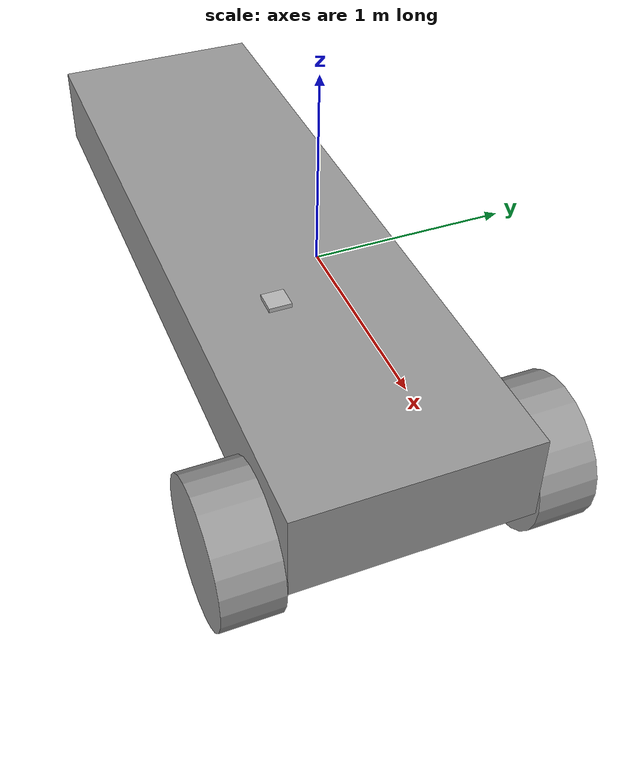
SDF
<?xml version='1.0'?>
<sdf version='1.6'>
  <model name='vehicle'>
    <link name='link_0'>
      <inertial>
        <mass>1.28573</mass>
        <inertia>
          <ixx>0.123502</ixx>
          <ixy>0</ixy>
          <ixz>0</ixz>
          <iyy>1.17774</iyy>
          <iyz>0</iyz>
          <izz>1.26852</izz>
        </inertia>
        <pose frame=''>0 0 0.4 0 -0 0</pose>
      </inertial>
      <pose frame=''>0.173636 -0.359882 0.24 -0 -0 -0</pose>
      <gravity>1</gravity>
      <self_collide>0</self_collide>
      <kinematic>0</kinematic>
      <enable_wind>0</enable_wind>
      <visual name='visual'>
        <pose frame=''>0 0 0 0 -0 0</pose>
        <geometry>
          <box>
            <size>3.29233 1 0.390741</size>
          </box>
        </geometry>
        <material>
          <lighting>1</lighting>
          <script>
            <uri>file://media/materials/scripts/gazebo.material</uri>
            <name>Gazebo/Grey</name>
          </script>
          <shader type='vertex'>
            <normal_map>__default__</normal_map>
          </shader>
          <ambient>0.3 0.3 0.3 1</ambient>
          <diffuse>0.7 0.7 0.7 1</diffuse>
          <specular>0.01 0.01 0.01 1</specular>
          <emissive>0 0 0 1</emissive>
        </material>
        <transparency>0</transparency>
        <cast_shadows>1</cast_shadows>
      </visual>
      <collision name='collision'>
        <laser_retro>0</laser_retro>
        <max_contacts>10</max_contacts>
        <pose frame=''>0 0 0 0 -0 0</pose>
        <geometry>
          <box>
            <size>3.29233 1 0.390741</size>
          </box>
        </geometry>
        <surface>
          <friction>
            <ode>
              <mu>1</mu>
              <mu2>1</mu2>
              <fdir1>0 0 0</fdir1>
              <slip1>0</slip1>
              <slip2>0</slip2>
            </ode>
            <torsional>
              <coefficient>1</coefficient>
              <patch_radius>0</patch_radius>
              <surface_radius>0</surface_radius>
              <use_patch_radius>1</use_patch_radius>
              <ode>
                <slip>0</slip>
              </ode>
            </torsional>
          </friction>
          <bounce>
            <restitution_coefficient>0</restitution_coefficient>
            <threshold>1e+06</threshold>
          </bounce>
          <contact>
            <collide_without_contact>0</collide_without_contact>
            <collide_without_contact_bitmask>1</collide_without_contact_bitmask>
            <collide_bitmask>1</collide_bitmask>
            <ode>
              <soft_cfm>0</soft_cfm>
              <soft_erp>0.2</soft_erp>
              <kp>1e+13</kp>
              <kd>1</kd>
              <max_vel>0.01</max_vel>
              <min_depth>0</min_depth>
            </ode>
            <bullet>
              <split_impulse>1</split_impulse>
              <split_impulse_penetration_threshold>-0.01</split_impulse_penetration_threshold>
              <soft_cfm>0</soft_cfm>
              <soft_erp>0.2</soft_erp>
              <kp>1e+13</kp>
              <kd>1</kd>
            </bullet>
          </contact>
        </surface>
      </collision>
    </link>
    <link name='link_2'>
      <inertial>
        <mass>1</mass>
        <inertia>
          <ixx>0.145833</ixx>
          <ixy>0</ixy>
          <ixz>0</ixz>
          <iyy>0.145833</iyy>
          <iyz>0</iyz>
          <izz>0.125</izz>
        </inertia>
        <pose frame=''>0 0 0 0 -0 0</pose>
      </inertial>
      <pose frame=''>1.51981 0.280147 0.04 1.5707 -0 0</pose>
      <gravity>1</gravity>
      <self_collide>0</self_collide>
      <kinematic>0</kinematic>
      <enable_wind>0</enable_wind>
      <visual name='visual'>
        <pose frame=''>0 0 0 0 -0 0</pose>
        <geometry>
          <cylinder>
            <radius>0.3</radius>
            <length>0.25</length>
          </cylinder>
        </geometry>
        <material>
          <lighting>1</lighting>
          <script>
            <uri>file://media/materials/scripts/gazebo.material</uri>
            <name>Gazebo/Grey</name>
          </script>
          <shader type='vertex'>
            <normal_map>__default__</normal_map>
          </shader>
          <ambient>0.3 0.3 0.3 1</ambient>
          <diffuse>0.7 0.7 0.7 1</diffuse>
          <specular>0.01 0.01 0.01 1</specular>
          <emissive>0 0 0 1</emissive>
        </material>
        <transparency>0</transparency>
        <cast_shadows>1</cast_shadows>
      </visual>
      <collision name='collision'>
        <laser_retro>0</laser_retro>
        <max_contacts>10</max_contacts>
        <pose frame=''>0 0 0 0 -0 0</pose>
        <geometry>
          <cylinder>
            <radius>0.3</radius>
            <length>0.25</length>
          </cylinder>
        </geometry>
        <surface>
          <friction>
            <ode>
              <mu>1</mu>
              <mu2>1</mu2>
              <fdir1>0 0 0</fdir1>
              <slip1>0</slip1>
              <slip2>0</slip2>
            </ode>
            <torsional>
              <coefficient>1</coefficient>
              <patch_radius>0</patch_radius>
              <surface_radius>0</surface_radius>
              <use_patch_radius>1</use_patch_radius>
              <ode>
                <slip>0</slip>
              </ode>
            </torsional>
          </friction>
          <bounce>
            <restitution_coefficient>0</restitution_coefficient>
            <threshold>1e+06</threshold>
          </bounce>
          <contact>
            <collide_without_contact>0</collide_without_contact>
            <collide_without_contact_bitmask>1</collide_without_contact_bitmask>
            <collide_bitmask>1</collide_bitmask>
            <ode>
              <soft_cfm>0</soft_cfm>
              <soft_erp>0.2</soft_erp>
              <kp>1e+13</kp>
              <kd>1</kd>
              <max_vel>0.01</max_vel>
              <min_depth>0</min_depth>
            </ode>
            <bullet>
              <split_impulse>1</split_impulse>
              <split_impulse_penetration_threshold>-0.01</split_impulse_penetration_threshold>
              <soft_cfm>0</soft_cfm>
              <soft_erp>0.2</soft_erp>
              <kp>1e+13</kp>
              <kd>1</kd>
            </bullet>
          </contact>
        </surface>
      </collision>
    </link>
    <link name='link_2_clone'>
      <inertial>
        <mass>0.999678</mass>
        <inertia>
          <ixx>0.0276994</ixx>
          <ixy>0</ixy>
          <ixz>0</ixz>
          <iyy>0.0276994</iyy>
          <iyz>0</iyz>
          <izz>0.0449855</izz>
        </inertia>
        <pose frame=''>0 0 0 0 -0 0</pose>
      </inertial>
      <pose frame=''>1.51981 -0.984911 0.04 1.5707 -0 0</pose>
      <gravity>1</gravity>
      <self_collide>0</self_collide>
      <kinematic>0</kinematic>
      <enable_wind>0</enable_wind>
      <visual name='visual'>
        <pose frame=''>0 0 0 0 -0 0</pose>
        <geometry>
          <cylinder>
            <radius>0.3</radius>
            <length>0.25</length>
          </cylinder>
        </geometry>
        <material>
          <lighting>1</lighting>
          <script>
            <uri>file://media/materials/scripts/gazebo.material</uri>
            <name>Gazebo/Grey</name>
          </script>
          <shader type='vertex'>
            <normal_map>__default__</normal_map>
          </shader>
          <ambient>0.3 0.3 0.3 1</ambient>
          <diffuse>0.7 0.7 0.7 1</diffuse>
          <specular>0.01 0.01 0.01 1</specular>
          <emissive>0 0 0 1</emissive>
        </material>
        <transparency>0</transparency>
        <cast_shadows>1</cast_shadows>
      </visual>
      <collision name='collision'>
        <laser_retro>0</laser_retro>
        <max_contacts>10</max_contacts>
        <pose frame=''>0 0 0 0 -0 0</pose>
        <geometry>
          <cylinder>
            <radius>0.3</radius>
            <length>0.25</length>
          </cylinder>
        </geometry>
        <surface>
          <friction>
            <ode>
              <mu>1</mu>
              <mu2>1</mu2>
              <fdir1>0 0 0</fdir1>
              <slip1>0</slip1>
              <slip2>0</slip2>
            </ode>
            <torsional>
              <coefficient>1</coefficient>
              <patch_radius>0</patch_radius>
              <surface_radius>0</surface_radius>
              <use_patch_radius>1</use_patch_radius>
              <ode>
                <slip>0</slip>
              </ode>
            </torsional>
          </friction>
          <bounce>
            <restitution_coefficient>0</restitution_coefficient>
            <threshold>1e+06</threshold>
          </bounce>
          <contact>
            <collide_without_contact>0</collide_without_contact>
            <collide_without_contact_bitmask>1</collide_without_contact_bitmask>
            <collide_bitmask>1</collide_bitmask>
            <ode>
              <soft_cfm>0</soft_cfm>
              <soft_erp>0.2</soft_erp>
              <kp>1e+13</kp>
              <kd>1</kd>
              <max_vel>0.01</max_vel>
              <min_depth>0</min_depth>
            </ode>
            <bullet>
              <split_impulse>1</split_impulse>
              <split_impulse_penetration_threshold>-0.01</split_impulse_penetration_threshold>
              <soft_cfm>0</soft_cfm>
              <soft_erp>0.2</soft_erp>
              <kp>1e+13</kp>
              <kd>1</kd>
            </bullet>
          </contact>
        </surface>
      </collision>
    </link>
    <link name='link_3'>
      <inertial>
        <mass>1</mass>
        <inertia>
          <ixx>0.1</ixx>
          <ixy>0</ixy>
          <ixz>0</ixz>
          <iyy>0.1</iyy>
          <iyz>0</iyz>
          <izz>0.1</izz>
        </inertia>
        <pose frame=''>0 0 0 0 -0 0</pose>
      </inertial>
      <pose frame=''>-1.27253 -0.359882 -0.06 -0 -0 -0</pose>
      <gravity>1</gravity>
      <self_collide>0</self_collide>
      <kinematic>0</kinematic>
      <enable_wind>0</enable_wind>
      <visual name='visual'>
        <pose frame=''>0 0 0 0 -0 0</pose>
        <geometry>
          <sphere>
            <radius>0.2</radius>
          </sphere>
        </geometry>
        <material>
          <lighting>1</lighting>
          <script>
            <uri>file://media/materials/scripts/gazebo.material</uri>
            <name>Gazebo/Grey</name>
          </script>
          <shader type='vertex'>
            <normal_map>__default__</normal_map>
          </shader>
          <ambient>0.3 0.3 0.3 1</ambient>
          <diffuse>0.7 0.7 0.7 1</diffuse>
          <specular>0.01 0.01 0.01 1</specular>
          <emissive>0 0 0 1</emissive>
        </material>
        <transparency>0</transparency>
        <cast_shadows>1</cast_shadows>
      </visual>
      <collision name='collision'>
        <laser_retro>0</laser_retro>
        <max_contacts>10</max_contacts>
        <pose frame=''>0 0 0 0 -0 0</pose>
        <geometry>
          <sphere>
            <radius>0.2</radius>
          </sphere>
        </geometry>
        <surface>
          <friction>
            <ode>
              <mu>1</mu>
              <mu2>1</mu2>
              <fdir1>0 0 0</fdir1>
              <slip1>0</slip1>
              <slip2>0</slip2>
            </ode>
            <torsional>
              <coefficient>1</coefficient>
              <patch_radius>0</patch_radius>
              <surface_radius>0</surface_radius>
              <use_patch_radius>1</use_patch_radius>
              <ode>
                <slip>0</slip>
              </ode>
            </torsional>
          </friction>
          <bounce>
            <restitution_coefficient>0</restitution_coefficient>
            <threshold>1e+06</threshold>
          </bounce>
          <contact>
            <collide_without_contact>0</collide_without_contact>
            <collide_without_contact_bitmask>1</collide_without_contact_bitmask>
            <collide_bitmask>1</collide_bitmask>
            <ode>
              <soft_cfm>0</soft_cfm>
              <soft_erp>0.2</soft_erp>
              <kp>1e+13</kp>
              <kd>1</kd>
              <max_vel>0.01</max_vel>
              <min_depth>0</min_depth>
            </ode>
            <bullet>
              <split_impulse>1</split_impulse>
              <split_impulse_penetration_threshold>-0.01</split_impulse_penetration_threshold>
              <soft_cfm>0</soft_cfm>
              <soft_erp>0.2</soft_erp>
              <kp>1e+13</kp>
              <kd>1</kd>
            </bullet>
          </contact>
        </surface>
      </collision>
    </link>
    <model name='depth_camera'>
      <link name='link'>
        <pose frame=''>0 0 0.05 0 -0 0</pose>
        <inertial>
          <mass>0.1</mass>
          <inertia>
            <ixx>0.000166667</ixx>
            <iyy>0.000166667</iyy>
            <izz>0.000166667</izz>
            <ixy>0</ixy>
            <ixz>0</ixz>
            <iyz>0</iyz>
          </inertia>
        </inertial>
        <collision name='collision'>
          <geometry>
            <box>
              <size>0.1 0.1 0.1</size>
            </box>
          </geometry>
          <max_contacts>10</max_contacts>
          <surface>
            <contact>
              <ode/>
            </contact>
            <bounce/>
            <friction>
              <torsional>
                <ode/>
              </torsional>
              <ode/>
            </friction>
          </surface>
        </collision>
        <visual name='visual'>
          <geometry>
            <box>
              <size>0.1 0.1 0.1</size>
            </box>
          </geometry>
        </visual>
        <sensor name='camera' type='depth'>
          <camera name='__default__'>
            <horizontal_fov>1.047</horizontal_fov>
            <image>
              <width>320</width>
              <height>240</height>
            </image>
            <clip>
              <near>0.1</near>
              <far>100</far>
            </clip>
          </camera>
          <always_on>1</always_on>
          <update_rate>30</update_rate>
          <visualize>1</visualize>
        </sensor>
        <self_collide>0</self_collide>
        <enable_wind>0</enable_wind>
        <kinematic>0</kinematic>
      </link>
      <pose frame=''>0.74495 -0.492089 0.354953 -0 -0 -0</pose>
    </model>
    <joint name='link_0_JOINT_0' type='revolute'>
      <parent>link_0</parent>
      <child>link_2</child>
      <pose frame=''>0 0 0 0 -0 0</pose>
      <axis>
        <xyz>0 0 1</xyz>
        <use_parent_model_frame>0</use_parent_model_frame>
        <limit>
          <lower>-1.79769e+308</lower>
          <upper>1.79769e+308</upper>
          <effort>-1</effort>
          <velocity>-1</velocity>
        </limit>
        <dynamics>
          <spring_reference>0</spring_reference>
          <spring_stiffness>0</spring_stiffness>
          <damping>0</damping>
          <friction>0</friction>
        </dynamics>
      </axis>
      <physics>
        <ode>
          <limit>
            <cfm>0</cfm>
            <erp>0.2</erp>
          </limit>
          <suspension>
            <cfm>0</cfm>
            <erp>0.2</erp>
          </suspension>
        </ode>
      </physics>
    </joint>
    <joint name='link_0_JOINT_1' type='revolute'>
      <parent>link_0</parent>
      <child>link_2_clone</child>
      <pose frame=''>0 0 0 0 -0 0</pose>
      <axis>
        <xyz>0 0 1</xyz>
        <use_parent_model_frame>0</use_parent_model_frame>
        <limit>
          <lower>-1.79769e+308</lower>
          <upper>1.79769e+308</upper>
          <effort>-1</effort>
          <velocity>-1</velocity>
        </limit>
        <dynamics>
          <spring_reference>0</spring_reference>
          <spring_stiffness>0</spring_stiffness>
          <damping>0</damping>
          <friction>0</friction>
        </dynamics>
      </axis>
      <physics>
        <ode>
          <limit>
            <cfm>0</cfm>
            <erp>0.2</erp>
          </limit>
          <suspension>
            <cfm>0</cfm>
            <erp>0.2</erp>
          </suspension>
        </ode>
      </physics>
    </joint>
    <joint name='link_0_JOINT_4' type='ball'>
      <parent>link_0</parent>
      <child>link_3</child>
      <pose frame=''>0 0 0 0 -0 0</pose>
      <physics>
        <ode>
          <limit>
            <cfm>0</cfm>
            <erp>0.2</erp>
          </limit>
          <suspension>
            <cfm>0</cfm>
            <erp>0.2</erp>
          </suspension>
        </ode>
      </physics>
    </joint>
    <joint name='link_0_JOINT_5' type='fixed'>
      <parent>link_0</parent>
      <child>depth_camera::link</child>
      <pose frame=''>0 0 0 0 -0 0</pose>
      <physics>
        <ode>
          <limit>
            <cfm>0</cfm>
            <erp>0.2</erp>
          </limit>
          <suspension>
            <cfm>0</cfm>
            <erp>0.2</erp>
          </suspension>
        </ode>
      </physics>
    </joint>
    <static>0</static>
    <allow_auto_disable>1</allow_auto_disable>
    <plugin name='follower' filename='libFollowerPlugin.so'/>
  </model>
</sdf>
